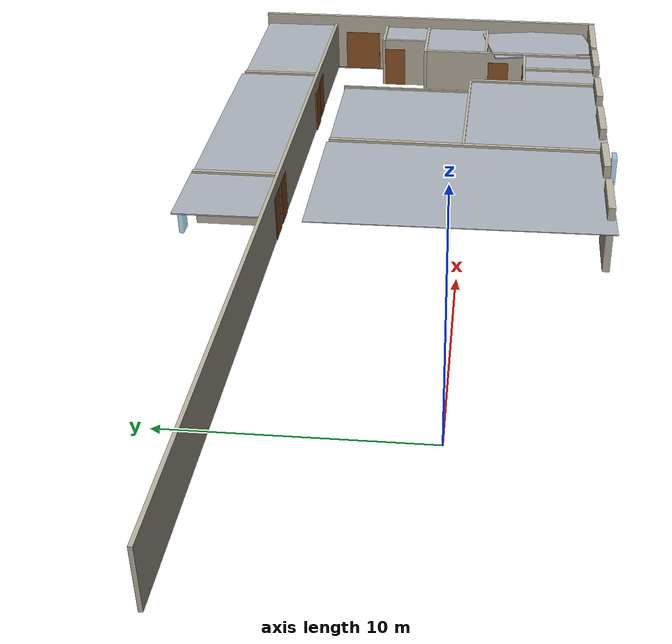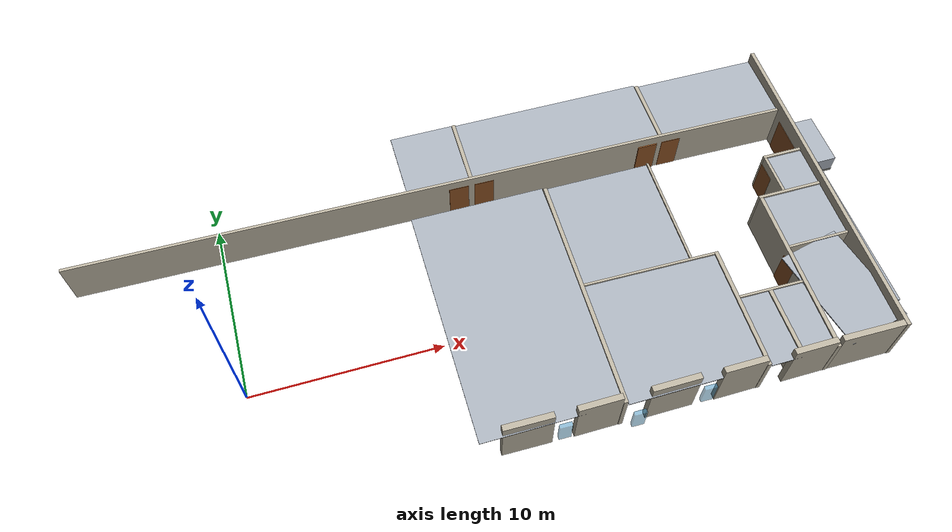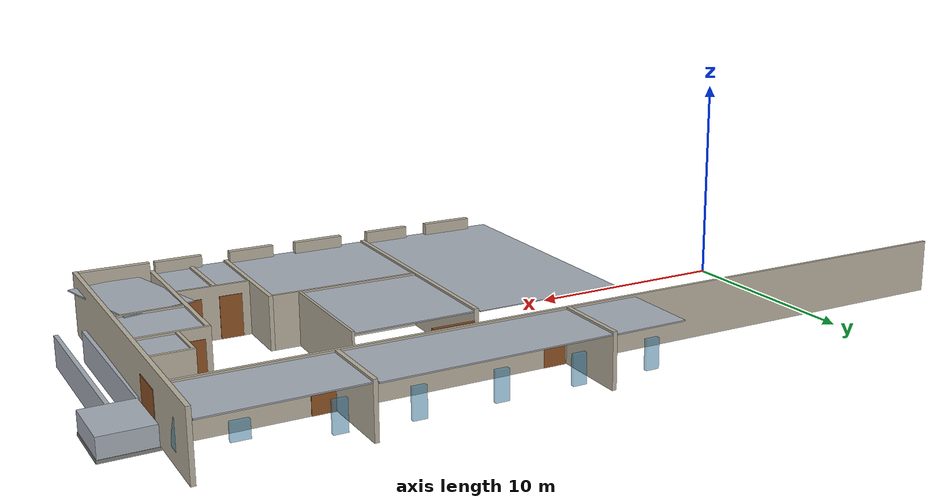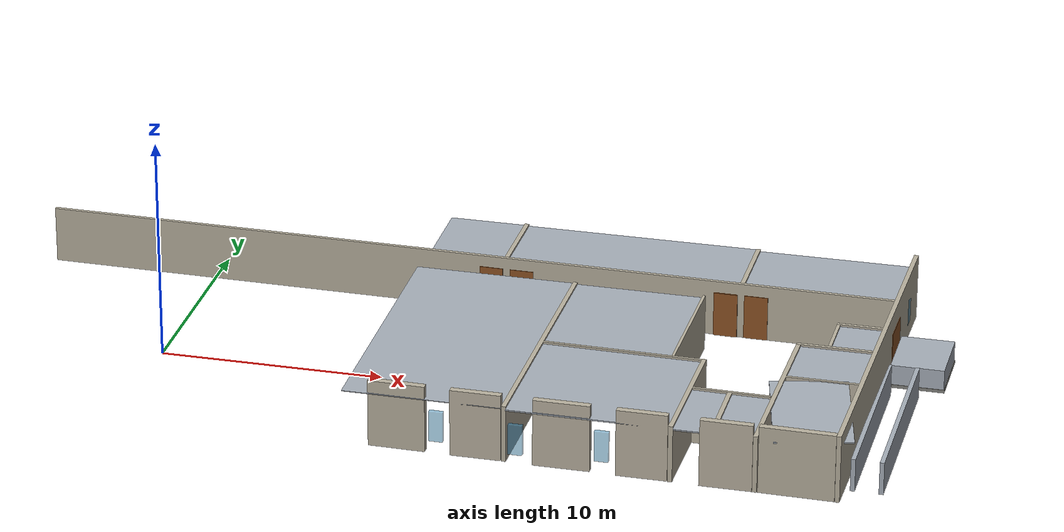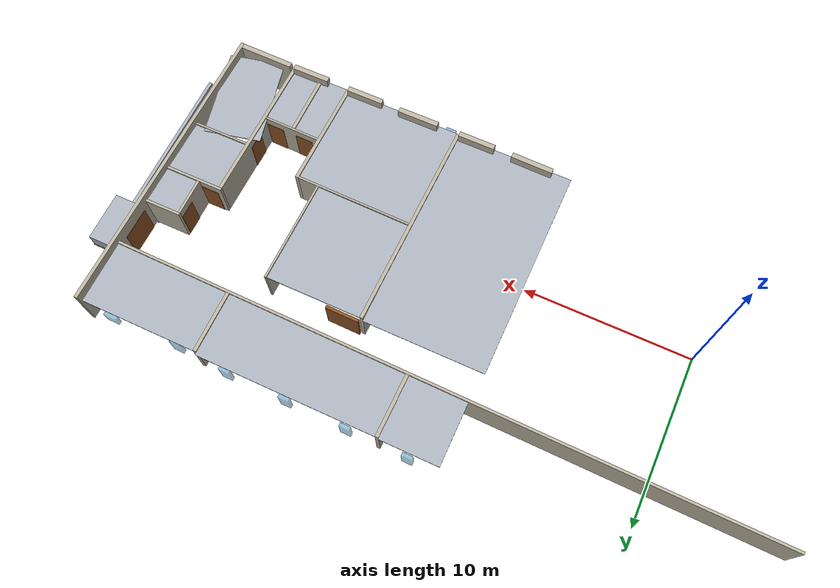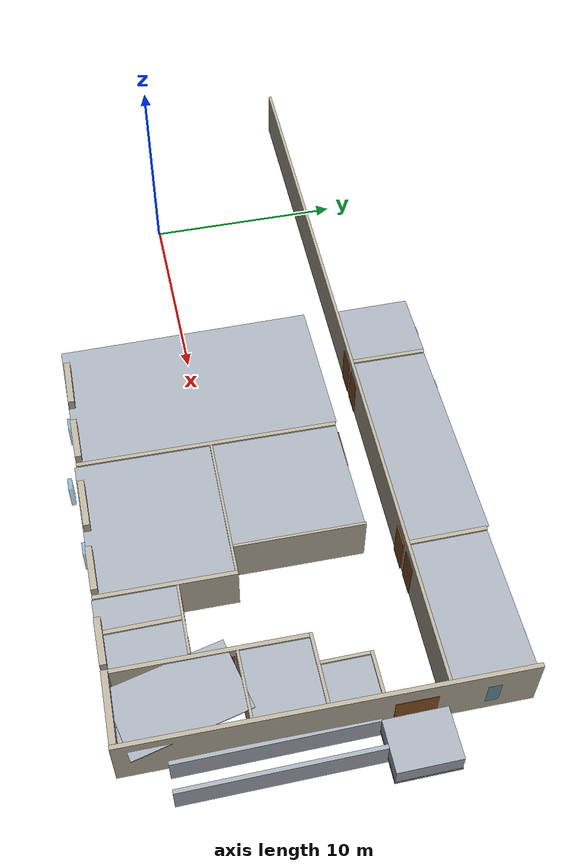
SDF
<sdf version="1.10">
 <world name="deltaseek_ifc_nominal_ers_d20_s1">
  <model name="ifc_05LeiFLbH7dBxLmOb3F9wh_c0b6c748">
   <static>true</static>
   <pose>18.3673633 6.19942406 1.0287 0 0 3.1273035</pose>
   <link name="link">
    <collision name="collision"><geometry><box><size>1.9812 0.174625 2.0574</size></box></geometry></collision>
    <visual name="visual">
     <geometry><box><size>1.9812 0.174625 2.0574</size></box></geometry>
     <material><ambient>0.55 0.32 0.14 1</ambient><diffuse>0.55 0.32 0.14 1</diffuse></material>
    </visual>
   </link>
  </model>
  <model name="ifc_0KvanlNQrCphrCb4tAxXt_47482a1f">
   <static>true</static>
   <pose>13.669876 9.80138835 1.2954 0 0 -1.58311292</pose>
   <link name="link">
    <collision name="collision"><geometry><box><size>3.64997568 0.2032 2.5908</size></box></geometry></collision>
    <visual name="visual">
     <geometry><box><size>3.64997568 0.2032 2.5908</size></box></geometry>
     <material><ambient>0.72 0.69 0.62 1</ambient><diffuse>0.72 0.69 0.62 1</diffuse></material>
    </visual>
   </link>
  </model>
  <model name="ifc_0KvanlNQrCphrCb4tAxk1F_8fe0ef8b">
   <static>true</static>
   <pose>25.9403051 -4.51256555 1.2954 0 0 -1.57079633</pose>
   <link name="link">
    <collision name="collision"><geometry><box><size>3.41663808 0.2032 2.5908</size></box></geometry></collision>
    <visual name="visual">
     <geometry><box><size>3.41663808 0.2032 2.5908</size></box></geometry>
     <material><ambient>0.72 0.69 0.62 1</ambient><diffuse>0.72 0.69 0.62 1</diffuse></material>
    </visual>
   </link>
  </model>
  <model name="ifc_0KvanlNQrCphrCb4tAxk2t_eecb1066">
   <static>true</static>
   <pose>24.2201343 -3.24257791 1.2954 0 0 -1.58651771</pose>
   <link name="link">
    <collision name="collision"><geometry><box><size>6.49074838 0.2032 2.5908</size></box></geometry></collision>
    <visual name="visual">
     <geometry><box><size>6.49074838 0.2032 2.5908</size></box></geometry>
     <material><ambient>0.72 0.69 0.62 1</ambient><diffuse>0.72 0.69 0.62 1</diffuse></material>
    </visual>
   </link>
  </model>
  <model name="ifc_0KvanlNQrCphrCb4tAxk7S_5a17a104">
   <static>true</static>
   <pose>17.1120782 -0.11043274 1.2954 0 0 -1.58651771</pose>
   <link name="link">
    <collision name="collision"><geometry><box><size>12.5307769 0.2032 2.5908</size></box></geometry></collision>
    <visual name="visual">
     <geometry><box><size>12.5307769 0.2032 2.5908</size></box></geometry>
     <material><ambient>0.72 0.69 0.62 1</ambient><diffuse>0.72 0.69 0.62 1</diffuse></material>
    </visual>
   </link>
  </model>
  <model name="ifc_0KvanlNQrCphrCb4tAxkRi_6cab8c0c">
   <static>true</static>
   <pose>22.953731 3.10944312 1.2954 0 0 1.55650717</pose>
   <link name="link">
    <collision name="collision">
     <geometry><box><size>6.17208981 0.123825 2.5908</size></box></geometry>
    </collision>
    <visual name="visual">
     <geometry><box><size>6.17208981 0.123825 2.5908</size></box></geometry>
     <material><ambient>0.72 0.69 0.62 1</ambient><diffuse>0.72 0.69 0.62 1</diffuse></material>
    </visual>
   </link>
  </model>
  <model name="ifc_0KvanlNQrCphrCb4tAxkS6_050fe222">
   <static>true</static>
   <pose>20.6924142 -0.003257556 1.2954 0 0 3.12587127</pose>
   <link name="link">
    <collision name="collision">
     <geometry><box><size>6.95321733 0.123825 2.5908</size></box></geometry>
    </collision>
    <visual name="visual">
     <geometry><box><size>6.95321733 0.123825 2.5908</size></box></geometry>
     <material><ambient>0.72 0.69 0.62 1</ambient><diffuse>0.72 0.69 0.62 1</diffuse></material>
    </visual>
   </link>
  </model>
  <model name="ifc_0KvanlNQrCphrCb4tAxkXq_6ccadb81">
   <static>true</static>
   <pose>12.3426614 -6.15517232 1.524 0 0 3.12587127</pose>
   <link name="link">
    <collision name="collision"><geometry><box><size>2.4892 0.3048 3.048</size></box></geometry></collision>
    <visual name="visual">
     <geometry><box><size>2.4892 0.3048 3.048</size></box></geometry>
     <material><ambient>0.72 0.69 0.62 1</ambient><diffuse>0.72 0.69 0.62 1</diffuse></material>
    </visual>
   </link>
  </model>
  <model name="ifc_0KvanlNQrCphrCb4tAxkYw_6f4d1ce0">
   <static>true</static>
   <pose>19.4981916 -6.25647581 1.524 0 0 3.14159265</pose>
   <link name="link">
    <collision name="collision"><geometry><box><size>2.4638 0.3048 3.048</size></box></geometry></collision>
    <visual name="visual">
     <geometry><box><size>2.4638 0.3048 3.048</size></box></geometry>
     <material><ambient>0.72 0.69 0.62 1</ambient><diffuse>0.72 0.69 0.62 1</diffuse></material>
    </visual>
   </link>
  </model>
  <model name="ifc_0KvanlNQrCphrCb4tAxkZw_e9581211">
   <static>true</static>
   <pose>15.7840695 -6.20500784 1.524 0 0 3.14159265</pose>
   <link name="link">
    <collision name="collision"><geometry><box><size>2.2098 0.3048 3.048</size></box></geometry></collision>
    <visual name="visual">
     <geometry><box><size>2.2098 0.3048 3.048</size></box></geometry>
     <material><ambient>0.72 0.69 0.62 1</ambient><diffuse>0.72 0.69 0.62 1</diffuse></material>
    </visual>
   </link>
  </model>
  <model name="ifc_0KvanlNQrCphrCb4tAxkaf_f995f2d5">
   <static>true</static>
   <pose>26.0155183 -2.74510633 1.2954 0 0 3.12587127</pose>
   <link name="link">
    <collision name="collision">
     <geometry><box><size>3.37148297 0.123825 2.5908</size></box></geometry>
    </collision>
    <visual name="visual">
     <geometry><box><size>3.37148297 0.123825 2.5908</size></box></geometry>
     <material><ambient>0.72 0.69 0.62 1</ambient><diffuse>0.72 0.69 0.62 1</diffuse></material>
    </visual>
   </link>
  </model>
  <model name="ifc_0KvanlNQrCphrCb4tAxkbh_a6542497">
   <static>true</static>
   <pose>22.9494537 -6.31686815 1.524 0 0 3.14159265</pose>
   <link name="link">
    <collision name="collision"><geometry><box><size>2.2098 0.3048 3.048</size></box></geometry></collision>
    <visual name="visual">
     <geometry><box><size>2.2098 0.3048 3.048</size></box></geometry>
     <material><ambient>0.72 0.69 0.62 1</ambient><diffuse>0.72 0.69 0.62 1</diffuse></material>
    </visual>
   </link>
  </model>
  <model name="ifc_0KvanlNQrCphrCb4tAxkex_9aa0b3fa">
   <static>true</static>
   <pose>29.5995059 -0.753615004 1.2954 0 0 3.14159265</pose>
   <link name="link">
    <collision name="collision">
     <geometry><box><size>3.28183331 0.123825 2.5908</size></box></geometry>
    </collision>
    <visual name="visual">
     <geometry><box><size>3.28183331 0.123825 2.5908</size></box></geometry>
     <material><ambient>0.72 0.69 0.62 1</ambient><diffuse>0.72 0.69 0.62 1</diffuse></material>
    </visual>
   </link>
  </model>
  <model name="ifc_0kOqgiFir1OwD68J2JXw_l_5ae3c16f">
   <static>true</static>
   <pose>31.4405101 6.19787652 1.0541 0 0 -1.58508899</pose>
   <link name="link">
    <collision name="collision"><geometry><box><size>1.8796 0.254 2.1082</size></box></geometry></collision>
    <visual name="visual">
     <geometry><box><size>1.8796 0.254 2.1082</size></box></geometry>
     <material><ambient>0.55 0.32 0.14 1</ambient><diffuse>0.55 0.32 0.14 1</diffuse></material>
    </visual>
   </link>
  </model>
  <model name="ifc_1abtvTofT8EB1v01F0DkHX_207af4a1">
   <static>true</static>
   <pose>29.2438592 3.64010209 1.2954 0 0 -1.57079633</pose>
   <link name="link">
    <collision name="collision"><geometry><box><size>2.19075 0.1524 2.5908</size></box></geometry></collision>
    <visual name="visual">
     <geometry><box><size>2.19075 0.1524 2.5908</size></box></geometry>
     <material><ambient>0.72 0.69 0.62 1</ambient><diffuse>0.72 0.69 0.62 1</diffuse></material>
    </visual>
   </link>
  </model>
  <model name="ifc_1abtvTofT8EB1v01F0DkJJ_802a1425">
   <static>true</static>
   <pose>29.5462416 2.46852709 1.2954 0 0 3.14159265</pose>
   <link name="link">
    <collision name="collision"><geometry><box><size>3.4808827 0.1524 2.5908</size></box></geometry></collision>
    <visual name="visual">
     <geometry><box><size>3.4808827 0.1524 2.5908</size></box></geometry>
     <material><ambient>0.72 0.69 0.62 1</ambient><diffuse>0.72 0.69 0.62 1</diffuse></material>
    </visual>
   </link>
  </model>
  <model name="ifc_1abtvTofT8EB1v01F0DkNK_24d141d2">
   <static>true</static>
   <pose>27.8371729 -2.07509683 1.2954 0 0 -1.58651771</pose>
   <link name="link">
    <collision name="collision"><geometry><box><size>8.93914698 0.2032 2.5908</size></box></geometry></collision>
    <visual name="visual">
     <geometry><box><size>8.93914698 0.2032 2.5908</size></box></geometry>
     <material><ambient>0.72 0.69 0.62 1</ambient><diffuse>0.72 0.69 0.62 1</diffuse></material>
    </visual>
   </link>
  </model>
  <model name="ifc_1abtvTofT8EB1v01F0Dkjc_b6c65d55">
   <static>true</static>
   <pose>11.8604531 7.92234335 1.2954 0 0 3.12927606</pose>
   <link name="link">
    <collision name="collision"><geometry><box><size>39.0025842 0.1524 2.5908</size></box></geometry></collision>
    <visual name="visual">
     <geometry><box><size>39.0025842 0.1524 2.5908</size></box></geometry>
     <material><ambient>0.72 0.69 0.62 1</ambient><diffuse>0.72 0.69 0.62 1</diffuse></material>
    </visual>
   </link>
  </model>
  <model name="ifc_1abtvTofT8EB1v01F0Dkl5_f337d52f">
   <static>true</static>
   <pose>30.2439171 4.81167709 1.2954 0 0 3.14159265</pose>
   <link name="link">
    <collision name="collision"><geometry><box><size>2.1525158 0.1524 2.5908</size></box></geometry></collision>
    <visual name="visual">
     <geometry><box><size>2.1525158 0.1524 2.5908</size></box></geometry>
     <material><ambient>0.72 0.69 0.62 1</ambient><diffuse>0.72 0.69 0.62 1</diffuse></material>
    </visual>
   </link>
  </model>
  <model name="ifc_1ccFJmoz1FOhtUmg41tu3g_a9d314e3">
   <static>true</static>
   <pose>32.7593622 6.18329503 0.4572 0 0 0</pose>
   <link name="link">
    <collision name="collision">
     <geometry><box><size>2.3627067 2.9602113 0.9144</size></box></geometry>
    </collision>
    <visual name="visual">
     <geometry><box><size>2.3627067 2.9602113 0.9144</size></box></geometry>
     <material><ambient>0.65 0.68 0.72 1</ambient><diffuse>0.65 0.68 0.72 1</diffuse></material>
    </visual>
   </link>
  </model>
  <model name="ifc_1pMTU_U0n8Z8G77fSA9Y8b_2ce42bdc">
   <static>true</static>
   <pose>32.7463967 6.18769978 -0.0762 0 0 0</pose>
   <link name="link">
    <collision name="collision">
     <geometry><box><size>2.45154405 2.98738061 0.1524</size></box></geometry>
    </collision>
    <visual name="visual">
     <geometry><box><size>2.45154405 2.98738061 0.1524</size></box></geometry>
     <material><ambient>0.5 0.5 0.48 1</ambient><diffuse>0.5 0.5 0.48 1</diffuse></material>
    </visual>
   </link>
  </model>
  <model name="ifc_1pMTU_U0n8Z8G77fSA9Y_k_e8f20915">
   <static>true</static>
   <pose>29.7009786 11.498826 1.7272 0 0 -0.014292658</pose>
   <link name="link">
    <collision name="collision"><geometry><box><size>0.762 0.2032 0.762</size></box></geometry></collision>
    <visual name="visual">
     <geometry><box><size>0.762 0.2032 0.762</size></box></geometry>
     <material><ambient>0.25 0.55 0.72 0.55</ambient><diffuse>0.25 0.55 0.72 0.55</diffuse></material>
    </visual>
   </link>
  </model>
  <model name="ifc_1s7WttW8LF3wo3GFHzG4JB_4864f556">
   <static>true</static>
   <pose>14.1165427 -6.43111026 1.33985 0 0 3.12587127</pose>
   <link name="link">
    <collision name="collision"><geometry><box><size>0.6096 0.2032 1.3716</size></box></geometry></collision>
    <visual name="visual">
     <geometry><box><size>0.6096 0.2032 1.3716</size></box></geometry>
     <material><ambient>0.25 0.55 0.72 0.55</ambient><diffuse>0.25 0.55 0.72 0.55</diffuse></material>
    </visual>
   </link>
  </model>
  <model name="ifc_1s7WttW8LF3wo3GFHzG4Kh_fbef2871">
   <static>true</static>
   <pose>17.6378723 -6.80189319 1.334991 0 0 3.12587127</pose>
   <link name="link">
    <collision name="collision"><geometry><box><size>0.6096 0.2032 1.3716</size></box></geometry></collision>
    <visual name="visual">
     <geometry><box><size>0.6096 0.2032 1.3716</size></box></geometry>
     <material><ambient>0.25 0.55 0.72 0.55</ambient><diffuse>0.25 0.55 0.72 0.55</diffuse></material>
    </visual>
   </link>
  </model>
  <model name="ifc_1s7WttW8LF3wo3GFHzG4L3_dde94d10">
   <static>true</static>
   <pose>21.2720757 -6.54361439 1.33985 0 0 3.12587127</pose>
   <link name="link">
    <collision name="collision"><geometry><box><size>0.6096 0.2032 1.3716</size></box></geometry></collision>
    <visual name="visual">
     <geometry><box><size>0.6096 0.2032 1.3716</size></box></geometry>
     <material><ambient>0.25 0.55 0.72 0.55</ambient><diffuse>0.25 0.55 0.72 0.55</diffuse></material>
    </visual>
   </link>
  </model>
  <model name="ifc_1s7WttW8LF3wo3GFHzG4OH_552682c7">
   <static>true</static>
   <pose>25.8199166 11.3476739 1.371243 0 0 -0.014292658</pose>
   <link name="link">
    <collision name="collision"><geometry><box><size>0.6096 0.2032 1.3716</size></box></geometry></collision>
    <visual name="visual">
     <geometry><box><size>0.6096 0.2032 1.3716</size></box></geometry>
     <material><ambient>0.25 0.55 0.72 0.55</ambient><diffuse>0.25 0.55 0.72 0.55</diffuse></material>
    </visual>
   </link>
  </model>
  <model name="ifc_1s7WttW8LF3wo3GFHzG4QU_3785028c">
   <static>true</static>
   <pose>22.6658973 11.5993828 1.33985 0 0 -0.014292658</pose>
   <link name="link">
    <collision name="collision"><geometry><box><size>0.6096 0.2032 1.3716</size></box></geometry></collision>
    <visual name="visual">
     <geometry><box><size>0.6096 0.2032 1.3716</size></box></geometry>
     <material><ambient>0.25 0.55 0.72 0.55</ambient><diffuse>0.25 0.55 0.72 0.55</diffuse></material>
    </visual>
   </link>
  </model>
  <model name="ifc_1s7WttW8LF3wo3GFHzG4Rk_fdefec53">
   <static>true</static>
   <pose>19.084863 11.6505688 1.33985 0 0 -0.014292658</pose>
   <link name="link">
    <collision name="collision"><geometry><box><size>0.6096 0.2032 1.3716</size></box></geometry></collision>
    <visual name="visual">
     <geometry><box><size>0.6096 0.2032 1.3716</size></box></geometry>
     <material><ambient>0.25 0.55 0.72 0.55</ambient><diffuse>0.25 0.55 0.72 0.55</diffuse></material>
    </visual>
   </link>
  </model>
  <model name="ifc_1s7WttW8LF3wo3GFHzG4S4_7544c55c">
   <static>true</static>
   <pose>15.5038288 11.7017548 1.33985 0 0 -0.014292658</pose>
   <link name="link">
    <collision name="collision"><geometry><box><size>0.6096 0.2032 1.3716</size></box></geometry></collision>
    <visual name="visual">
     <geometry><box><size>0.6096 0.2032 1.3716</size></box></geometry>
     <material><ambient>0.25 0.55 0.72 0.55</ambient><diffuse>0.25 0.55 0.72 0.55</diffuse></material>
    </visual>
   </link>
  </model>
  <model name="ifc_1s7WttW8LF3wo3GFHzG4TO_cc8a6f71">
   <static>true</static>
   <pose>11.9227946 11.7529408 1.33985 0 0 -0.014292658</pose>
   <link name="link">
    <collision name="collision"><geometry><box><size>0.6096 0.2032 1.3716</size></box></geometry></collision>
    <visual name="visual">
     <geometry><box><size>0.6096 0.2032 1.3716</size></box></geometry>
     <material><ambient>0.25 0.55 0.72 0.55</ambient><diffuse>0.25 0.55 0.72 0.55</diffuse></material>
    </visual>
   </link>
  </model>
  <model name="ifc_1s7WttW8LF3wo3GFHzG7G1_8c630024">
   <static>true</static>
   <pose>11.873145 9.82668947 2.466975 0 0 0</pose>
   <link name="link">
    <collision name="collision">
     <geometry><box><size>3.43523152 3.69779842 0.05715</size></box></geometry>
    </collision>
    <visual name="visual">
     <geometry><box><size>3.43523152 3.69779842 0.05715</size></box></geometry>
     <material><ambient>0.65 0.68 0.72 1</ambient><diffuse>0.65 0.68 0.72 1</diffuse></material>
    </visual>
   </link>
  </model>
  <model name="ifc_1s7WttW8LF3wo3GFHzG7G9_f11cfd13">
   <static>true</static>
   <pose>19.0233514 9.73497083 2.466975 0 0 0</pose>
   <link name="link">
    <collision name="collision">
     <geometry><box><size>10.5487203 3.77922819 0.05715</size></box></geometry>
    </collision>
    <visual name="visual">
     <geometry><box><size>10.5487203 3.77922819 0.05715</size></box></geometry>
     <material><ambient>0.65 0.68 0.72 1</ambient><diffuse>0.65 0.68 0.72 1</diffuse></material>
    </visual>
   </link>
  </model>
  <model name="ifc_1s7WttW8LF3wo3GFHzG7GH_e8636011">
   <static>true</static>
   <pose>27.9268264 9.61500092 2.466975 0 0 0</pose>
   <link name="link">
    <collision name="collision">
     <geometry><box><size>6.8518295 3.713085 0.05715</size></box></geometry>
    </collision>
    <visual name="visual">
     <geometry><box><size>6.8518295 3.713085 0.05715</size></box></geometry>
     <material><ambient>0.65 0.68 0.72 1</ambient><diffuse>0.65 0.68 0.72 1</diffuse></material>
    </visual>
   </link>
  </model>
  <model name="ifc_1s7WttW8LF3wo3GFHzG7GP_b442ee7a">
   <static>true</static>
   <pose>30.319028 3.64010209 2.466975 0 0 0</pose>
   <link name="link">
    <collision name="collision">
     <geometry><box><size>1.99793745 2.19075 0.05715</size></box></geometry>
    </collision>
    <visual name="visual">
     <geometry><box><size>1.99793745 2.19075 0.05715</size></box></geometry>
     <material><ambient>0.65 0.68 0.72 1</ambient><diffuse>0.65 0.68 0.72 1</diffuse></material>
    </visual>
   </link>
  </model>
  <model name="ifc_1s7WttW8LF3wo3GFHzG7Gu_24b27ac2">
   <static>true</static>
   <pose>29.6225203 0.850312292 2.466975 0 0 0</pose>
   <link name="link">
    <collision name="collision">
     <geometry><box><size>3.32396843 3.08402959 0.05715</size></box></geometry>
    </collision>
    <visual name="visual">
     <geometry><box><size>3.32396843 3.08402959 0.05715</size></box></geometry>
     <material><ambient>0.65 0.68 0.72 1</ambient><diffuse>0.65 0.68 0.72 1</diffuse></material>
    </visual>
   </link>
  </model>
  <model name="ifc_1s7WttW8LF3wo3GFHzG7Z4_0261e64b">
   <static>true</static>
   <pose>20.6412365 -3.24279475 2.466975 0 0 0</pose>
   <link name="link">
    <collision name="collision">
     <geometry><box><size>7.05258403 6.45294681 0.05715</size></box></geometry>
    </collision>
    <visual name="visual">
     <geometry><box><size>7.05258403 6.45294681 0.05715</size></box></geometry>
     <material><ambient>0.65 0.68 0.72 1</ambient><diffuse>0.65 0.68 0.72 1</diffuse></material>
    </visual>
   </link>
  </model>
  <model name="ifc_1s7WttW8LF3wo3GFHzG7l0_04b85284">
   <static>true</static>
   <pose>29.5561275 -3.54405607 2.466975 0.015312 -0.006466 0.220339</pose>
   <link name="link">
    <collision name="collision">
     <geometry><box><size>3.36505038 5.45705713 0.05715</size></box></geometry>
    </collision>
    <visual name="visual">
     <geometry><box><size>3.36505038 5.45705713 0.05715</size></box></geometry>
     <material><ambient>0.65 0.68 0.72 1</ambient><diffuse>0.65 0.68 0.72 1</diffuse></material>
    </visual>
   </link>
  </model>
  <model name="ifc_1s7WttW8LF3wo3GFHzG7lC_5ec75308">
   <static>true</static>
   <pose>26.8827676 -4.51416297 2.466975 0 0 0</pose>
   <link name="link">
    <collision name="collision">
     <geometry><box><size>1.68172512 3.41344323 0.05715</size></box></geometry>
    </collision>
    <visual name="visual">
     <geometry><box><size>1.68172512 3.41344323 0.05715</size></box></geometry>
     <material><ambient>0.65 0.68 0.72 1</ambient><diffuse>0.65 0.68 0.72 1</diffuse></material>
    </visual>
   </link>
  </model>
  <model name="ifc_1s7WttW8LF3wo3GFHzG7lj_03a67078">
   <static>true</static>
   <pose>20.0756798 3.08867972 2.466975 0 0 0</pose>
   <link name="link">
    <collision name="collision">
     <geometry><box><size>5.71694254 6.12780897 0.05715</size></box></geometry>
    </collision>
    <visual name="visual">
     <geometry><box><size>5.71694254 6.12780897 0.05715</size></box></geometry>
     <material><ambient>0.65 0.68 0.72 1</ambient><diffuse>0.65 0.68 0.72 1</diffuse></material>
    </visual>
   </link>
  </model>
  <model name="ifc_28vH9qWOD0Axdrb4AN4j_q_80c27e56">
   <static>true</static>
   <pose>25.0563076 -4.65312484 2.466975 0 0 0</pose>
   <link name="link">
    <collision name="collision">
     <geometry><box><size>1.56479495 3.74511948 0.05715</size></box></geometry>
    </collision>
    <visual name="visual">
     <geometry><box><size>1.56479495 3.74511948 0.05715</size></box></geometry>
     <material><ambient>0.65 0.68 0.72 1</ambient><diffuse>0.65 0.68 0.72 1</diffuse></material>
    </visual>
   </link>
  </model>
  <model name="ifc_2ASREFGDX0cRYE_pE9Hnt0_a697091a">
   <static>true</static>
   <pose>31.5347796 0.185771464 0.169596877 0 0 0</pose>
   <link name="link">
    <collision name="collision">
     <geometry><box><size>0.194544113 9.14366861 1.48960625</size></box></geometry>
    </collision>
    <visual name="visual">
     <geometry><box><size>0.194544113 9.14366861 1.48960625</size></box></geometry>
     <material><ambient>0.65 0.68 0.72 1</ambient><diffuse>0.65 0.68 0.72 1</diffuse></material>
    </visual>
   </link>
  </model>
  <model name="ifc_2ASREFGDX0cRYE_pE9Hnt4_7c84c0c7">
   <static>true</static>
   <pose>32.7538289 0.166604745 0.169596877 0 0 0</pose>
   <link name="link">
    <collision name="collision">
     <geometry><box><size>0.194544113 9.14366861 1.48960625</size></box></geometry>
    </collision>
    <visual name="visual">
     <geometry><box><size>0.194544113 9.14366861 1.48960625</size></box></geometry>
     <material><ambient>0.65 0.68 0.72 1</ambient><diffuse>0.65 0.68 0.72 1</diffuse></material>
    </visual>
   </link>
  </model>
  <model name="ifc_2UiYIxdTHDMQxEBYlcr4xz_488df4f6">
   <static>true</static>
   <pose>13.5238687 -0.051368876 2.466975 0 0 0</pose>
   <link name="link">
    <collision name="collision">
     <geometry><box><size>7.10487556 12.6120779 0.0324876033</size></box></geometry>
    </collision>
    <visual name="visual">
     <geometry><box><size>7.10487556 12.6120779 0.0324876033</size></box></geometry>
     <material><ambient>0.65 0.68 0.72 1</ambient><diffuse>0.65 0.68 0.72 1</diffuse></material>
    </visual>
   </link>
  </model>
  <model name="ifc_38qgW_sXr868lESAj2QWIX_e740fb8f">
   <static>true</static>
   <pose>26.5333102 -6.37328459 1.524 0 0 0</pose>
   <link name="link">
    <collision name="collision"><geometry><box><size>2.25187173 0.3048 3.048</size></box></geometry></collision>
    <visual name="visual">
     <geometry><box><size>2.25187173 0.3048 3.048</size></box></geometry>
     <material><ambient>0.72 0.69 0.62 1</ambient><diffuse>0.72 0.69 0.62 1</diffuse></material>
    </visual>
   </link>
  </model>
  <model name="ifc_38qgW_sXr868lESAj2QWZy_0fad9336">
   <static>true</static>
   <pose>28.6088592 2.46852709 1.0287 0 0 3.14159265</pose>
   <link name="link">
    <collision name="collision"><geometry><box><size>1.0668 0.2032 2.0574</size></box></geometry></collision>
    <visual name="visual">
     <geometry><box><size>1.0668 0.2032 2.0574</size></box></geometry>
     <material><ambient>0.55 0.32 0.14 1</ambient><diffuse>0.55 0.32 0.14 1</diffuse></material>
    </visual>
   </link>
  </model>
  <model name="ifc_38qgW_sXr868lESAj2QWbe_e40add89">
   <static>true</static>
   <pose>25.0444555 7.75995315 1.0287 0 0 -0.012316592</pose>
   <link name="link">
    <collision name="collision"><geometry><box><size>1.0668 0.2032 2.0574</size></box></geometry></collision>
    <visual name="visual">
     <geometry><box><size>1.0668 0.2032 2.0574</size></box></geometry>
     <material><ambient>0.55 0.32 0.14 1</ambient><diffuse>0.55 0.32 0.14 1</diffuse></material>
    </visual>
   </link>
  </model>
  <model name="ifc_38qgW_sXr868lESAj2QWdb_45beef27">
   <static>true</static>
   <pose>29.2438592 4.20207709 1.0287 0 0 -1.57079633</pose>
   <link name="link">
    <collision name="collision"><geometry><box><size>1.0668 0.2032 2.0574</size></box></geometry></collision>
    <visual name="visual">
     <geometry><box><size>1.0668 0.2032 2.0574</size></box></geometry>
     <material><ambient>0.55 0.32 0.14 1</ambient><diffuse>0.55 0.32 0.14 1</diffuse></material>
    </visual>
   </link>
  </model>
  <model name="ifc_38qgW_sXr868lESAj2QWfz_5ef992f8">
   <static>true</static>
   <pose>14.351257 7.89166358 1.0287 0 0 -0.012316592</pose>
   <link name="link">
    <collision name="collision"><geometry><box><size>1.0668 0.2032 2.0574</size></box></geometry></collision>
    <visual name="visual">
     <geometry><box><size>1.0668 0.2032 2.0574</size></box></geometry>
     <material><ambient>0.55 0.32 0.14 1</ambient><diffuse>0.55 0.32 0.14 1</diffuse></material>
    </visual>
   </link>
  </model>
  <model name="ifc_38qgW_sXr868lESAj2QWhA_c1c4b124">
   <static>true</static>
   <pose>23.6793091 7.77676796 1.0287 0 0 -0.012316592</pose>
   <link name="link">
    <collision name="collision"><geometry><box><size>1.0668 0.283261816 2.0574</size></box></geometry></collision>
    <visual name="visual">
     <geometry><box><size>1.0668 0.283261816 2.0574</size></box></geometry>
     <material><ambient>0.55 0.32 0.14 1</ambient><diffuse>0.55 0.32 0.14 1</diffuse></material>
    </visual>
   </link>
  </model>
  <model name="ifc_38qgW_sXr868lESAj2QWl4_990ea491">
   <static>true</static>
   <pose>12.9607125 7.90879122 1.0287 0 0 -0.012316592</pose>
   <link name="link">
    <collision name="collision"><geometry><box><size>1.0668 0.2032 2.0574</size></box></geometry></collision>
    <visual name="visual">
     <geometry><box><size>1.0668 0.2032 2.0574</size></box></geometry>
     <material><ambient>0.55 0.32 0.14 1</ambient><diffuse>0.55 0.32 0.14 1</diffuse></material>
    </visual>
   </link>
  </model>
  <model name="ifc_38qgW_sXr868lESAj2QWsq_35dbae26">
   <static>true</static>
   <pose>29.5249664 -6.39928612 1.524 0 0 -0.015721382</pose>
   <link name="link">
    <collision name="collision"><geometry><box><size>3.2512 0.3048 3.048</size></box></geometry></collision>
    <visual name="visual">
     <geometry><box><size>3.2512 0.3048 3.048</size></box></geometry>
     <material><ambient>0.72 0.69 0.62 1</ambient><diffuse>0.72 0.69 0.62 1</diffuse></material>
    </visual>
   </link>
  </model>
  <model name="ifc_38qgW_sXr868lESAj2QWuI_b51901da">
   <static>true</static>
   <pose>27.8475679 -1.41395047 1.0287 0 0 -1.58651771</pose>
   <link name="link">
    <collision name="collision"><geometry><box><size>1.0668 0.254 2.0574</size></box></geometry></collision>
    <visual name="visual">
     <geometry><box><size>1.0668 0.254 2.0574</size></box></geometry>
     <material><ambient>0.55 0.32 0.14 1</ambient><diffuse>0.55 0.32 0.14 1</diffuse></material>
    </visual>
   </link>
  </model>
  <model name="ifc_38qgW_sXr868lESAj2QZL3_8aa72860">
   <static>true</static>
   <pose>25.2442722 -2.73298028 1.0287 0 0 3.12587127</pose>
   <link name="link">
    <collision name="collision"><geometry><box><size>1.0668 0.174625 2.0574</size></box></geometry></collision>
    <visual name="visual">
     <geometry><box><size>1.0668 0.174625 2.0574</size></box></geometry>
     <material><ambient>0.55 0.32 0.14 1</ambient><diffuse>0.55 0.32 0.14 1</diffuse></material>
    </visual>
   </link>
  </model>
  <model name="ifc_38qgW_sXr868lESAj2QZNR_9590338d">
   <static>true</static>
   <pose>27.1296221 -2.76262303 1.0287 0 0 3.12587127</pose>
   <link name="link">
    <collision name="collision"><geometry><box><size>1.0668 0.174625 2.0574</size></box></geometry></collision>
    <visual name="visual">
     <geometry><box><size>1.0668 0.174625 2.0574</size></box></geometry>
     <material><ambient>0.55 0.32 0.14 1</ambient><diffuse>0.55 0.32 0.14 1</diffuse></material>
    </visual>
   </link>
  </model>
  <model name="ifc_3C7tv_L0f0KfTGCJ7I6E_Q_8283bceb">
   <static>true</static>
   <pose>24.3993116 9.65865088 1.2954 0 0 -1.57079633</pose>
   <link name="link">
    <collision name="collision"><geometry><box><size>3.63159401 0.2032 2.5908</size></box></geometry></collision>
    <visual name="visual">
     <geometry><box><size>3.63159401 0.2032 2.5908</size></box></geometry>
     <material><ambient>0.72 0.69 0.62 1</ambient><diffuse>0.72 0.69 0.62 1</diffuse></material>
    </visual>
   </link>
  </model>
  <model name="ifc_3_ZduKFZv0NPDqgIQEKqbf_f6c585d4">
   <static>true</static>
   <pose>31.4890455 9.59347599 1.33985 0 0 -1.58508899</pose>
   <link name="link">
    <collision name="collision"><geometry><box><size>0.6096 0.2032 1.3716</size></box></geometry></collision>
    <visual name="visual">
     <geometry><box><size>0.6096 0.2032 1.3716</size></box></geometry>
     <material><ambient>0.25 0.55 0.72 0.55</ambient><diffuse>0.25 0.55 0.72 0.55</diffuse></material>
    </visual>
   </link>
  </model>
  <model name="ifc_3qo_AKI5r02OFVkPm_OvPR_bf9f12d6">
   <static>true</static>
   <pose>30.5659849 1.66316435 1.057275 0 0 1.55650367</pose>
   <link name="link">
    <collision name="collision"><geometry><box><size>1.50495 1.49225 2.11455</size></box></geometry></collision>
    <visual name="visual">
     <geometry><box><size>1.50495 1.49225 2.11455</size></box></geometry>
     <material><ambient>0.65 0.68 0.72 1</ambient><diffuse>0.65 0.68 0.72 1</diffuse></material>
    </visual>
   </link>
  </model>
  <model name="ifc_3qo_AKI5r02OFVkPm_OwZW_ab3525b9">
   <static>true</static>
   <pose>30.4634305 -5.51166252 1.057275 0 0 -1.58508899</pose>
   <link name="link">
    <collision name="collision"><geometry><box><size>1.50495 1.49225 2.11455</size></box></geometry></collision>
    <visual name="visual">
     <geometry><box><size>1.50495 1.49225 2.11455</size></box></geometry>
     <material><ambient>0.65 0.68 0.72 1</ambient><diffuse>0.65 0.68 0.72 1</diffuse></material>
    </visual>
   </link>
  </model>
  <model name="ifc_3qo_AKI5r02OFVkPm_Owps_9fc12248">
   <static>true</static>
   <pose>30.4801922 -4.33899659 1.057275 0 0 -1.58508899</pose>
   <link name="link">
    <collision name="collision"><geometry><box><size>0.84455 1.49225 2.11455</size></box></geometry></collision>
    <visual name="visual">
     <geometry><box><size>0.84455 1.49225 2.11455</size></box></geometry>
     <material><ambient>0.65 0.68 0.72 1</ambient><diffuse>0.65 0.68 0.72 1</diffuse></material>
    </visual>
   </link>
  </model>
  <model name="ifc_3qo_AKI5r02OFVkPm_Owqu_a08811a2">
   <static>true</static>
   <pose>30.492211 -3.49814278 1.057275 0 0 -1.58508899</pose>
   <link name="link">
    <collision name="collision">
     <geometry><box><size>0.578325037 1.49225 2.11455</size></box></geometry>
    </collision>
    <visual name="visual">
     <geometry><box><size>0.578325037 1.49225 2.11455</size></box></geometry>
     <material><ambient>0.65 0.68 0.72 1</ambient><diffuse>0.65 0.68 0.72 1</diffuse></material>
    </visual>
   </link>
  </model>
  <model name="ifc_3qo_AKI5r02OFVkPm_Owzm_fd8d224e">
   <static>true</static>
   <pose>30.549318 0.497132182 1.057275 0 0 -1.58508899</pose>
   <link name="link">
    <collision name="collision"><geometry><box><size>0.84455 1.49225 2.11455</size></box></geometry></collision>
    <visual name="visual">
     <geometry><box><size>0.84455 1.49225 2.11455</size></box></geometry>
     <material><ambient>0.65 0.68 0.72 1</ambient><diffuse>0.65 0.68 0.72 1</diffuse></material>
    </visual>
   </link>
  </model>
  <model name="ifc_3qo_AKI5r02OFVkPm_Ox26_e697a8b4">
   <static>true</static>
   <pose>30.9978167 -1.66993401 0.889 0 0 1.55650367</pose>
   <link name="link">
    <collision name="collision"><geometry><box><size>0.0254 0.4572 1.0668</size></box></geometry></collision>
    <visual name="visual">
     <geometry><box><size>0.0254 0.4572 1.0668</size></box></geometry>
     <material><ambient>0.65 0.68 0.72 1</ambient><diffuse>0.65 0.68 0.72 1</diffuse></material>
    </visual>
   </link>
  </model>
  <model name="ifc_3qo_AKI5r02OFVkPm_Oxz7_719ed55c">
   <static>true</static>
   <pose>30.9865366 -2.45910592 0.889 0 0 1.55650367</pose>
   <link name="link">
    <collision name="collision"><geometry><box><size>0.0254 0.4572 1.0668</size></box></geometry></collision>
    <visual name="visual">
     <geometry><box><size>0.0254 0.4572 1.0668</size></box></geometry>
     <material><ambient>0.65 0.68 0.72 1</ambient><diffuse>0.65 0.68 0.72 1</diffuse></material>
    </visual>
   </link>
  </model>
  <model name="ifc_3xoURert943RLFHAzdmQ77_1f404945">
   <static>true</static>
   <pose>31.3874776 2.48766377 1.524 0 0 -1.58508899</pose>
   <link name="link">
    <collision name="collision"><geometry><box><size>18.1754761 0.2032 3.048</size></box></geometry></collision>
    <visual name="visual">
     <geometry><box><size>18.1754761 0.2032 3.048</size></box></geometry>
     <material><ambient>0.72 0.69 0.62 1</ambient><diffuse>0.72 0.69 0.62 1</diffuse></material>
    </visual>
   </link>
  </model>
  <model name="ifc_unexpected_005_44afd00f">
   <static>true</static>
   <pose>27.791951 -4.719513 0.219 0 0 2.213584</pose>
   <link name="link">
    <collision name="collision"><geometry><box><size>0.438 0.438 0.438</size></box></geometry></collision>
    <visual name="visual">
     <geometry><box><size>0.438 0.438 0.438</size></box></geometry>
     <material><ambient>0.55 0.28 0.08 1</ambient><diffuse>0.55 0.28 0.08 1</diffuse></material>
    </visual>
   </link>
  </model>
 </world>
</sdf>
